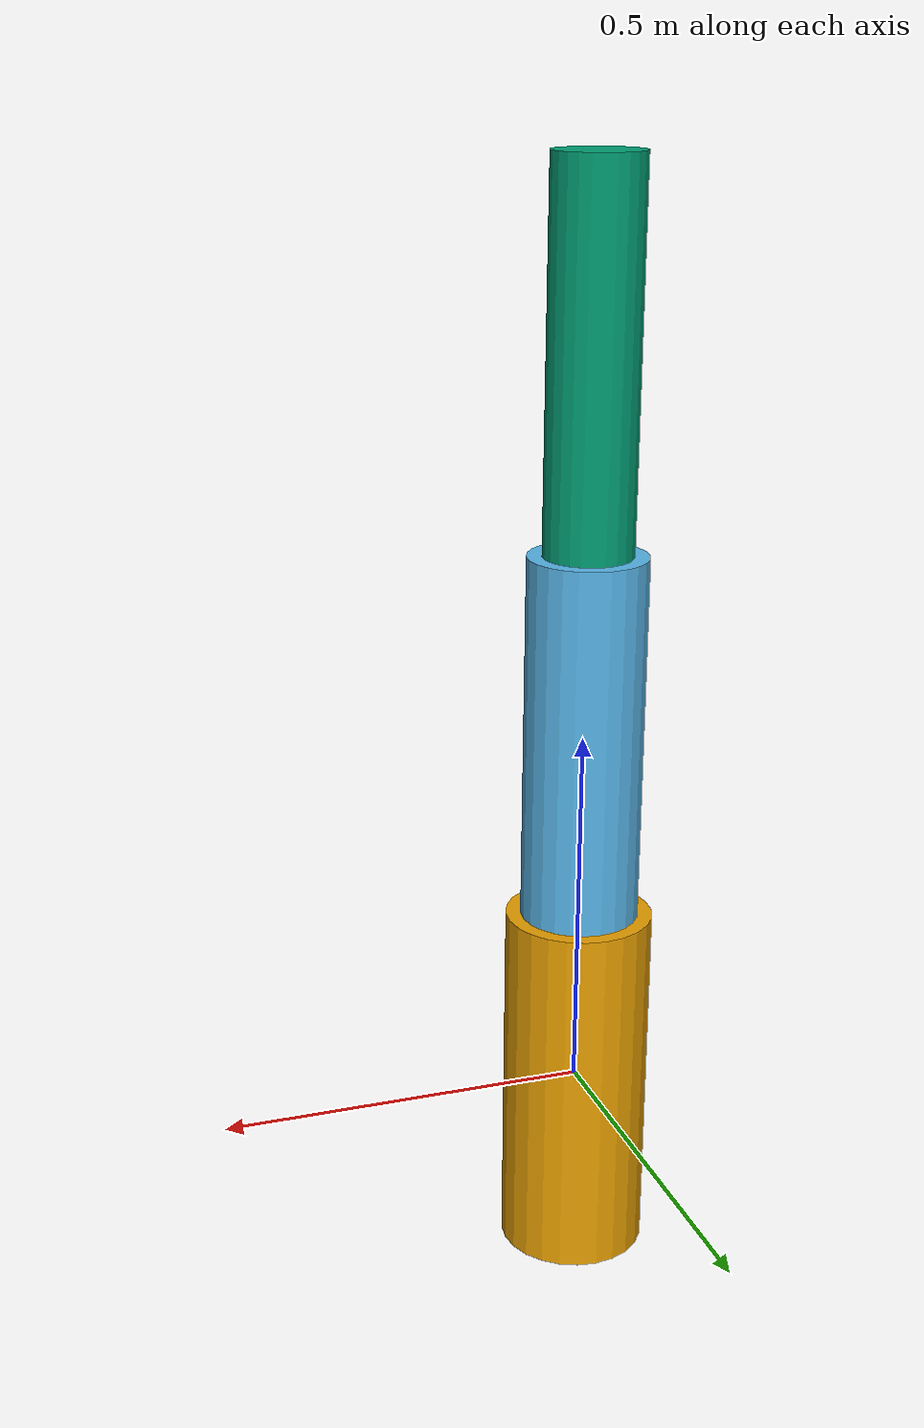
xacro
<?xml version="1.0"?>
<robot name="mrm" xmlns:xacro="http://www.ros.org/wiki/xacro">
  <link name="base_link">
    <visual>
	    <origin rpy="0 0 0" xyz="0.0 0 0" />
      <geometry>
        <cylinder length="0.5" radius="0.1"/>
      </geometry>
    </visual>
    <inertial>
	    <origin rpy="0 0 0" xyz="0.0 0 0" />
        <mass value="3"/>
         <inertia ixx="0.002"  ixy="0"  ixz="0.0" iyy= "0.002" iyz="0" izz="0.0005" />
      </inertial>
     <collision>
	    <origin rpy="0 0 0" xyz="0.0 0 0" />
        <geometry>
            <cylinder length="0.5" radius="0.1"/>
        </geometry>
     </collision>
  </link>

	<joint name="base_link_to_link_01" type="revolute">
	  <axis xyz="1 0 0"/>
		<limit effort="10.0" lower="-1.57" upper="1.57" velocity="0.5"/>
		<origin rpy="3.14 0 0" xyz="0.0 0 0.25"/>
		<parent link="base_link"/>
		<child link="link_01"/>
	</joint>

  <link name="link_01">
    <visual>
	    <origin rpy="0 0 0" xyz="0.0 0 -0.25" />
      <geometry>
        <cylinder length="0.5" radius="0.08"/>
      </geometry>
    </visual>
    <inertial>
	    <origin rpy="0 0 0" xyz="0.0 0 0" />
        <mass value="0.01"/>
         <inertia ixx="0.00224"  ixy="0"  ixz="0.0" iyy= "0.00224" iyz="0" izz="0.00032" />
      </inertial>
     <collision>
	    <origin rpy="0 0 0" xyz="0.0 0 0" />
        <geometry>
        <cylinder length="0.5" radius="0.08"/>
        </geometry>
     </collision>
  </link>

 <joint name="link_01_to_link_02" type="revolute">
	  <axis xyz="1 0 0"/>
		<limit effort="10.0" lower="-1.57" upper="1.57" velocity="0.5"/>
		<origin rpy="3.14 0 0" xyz="0.0 0 -0.5"/>
		<parent link="link_01"/>
		<child link="link_02"/>
	</joint>

  <link name="link_02">
    <visual>
	    <origin rpy="0 0 0" xyz="0 0 0.25" />
      <geometry>
        <cylinder length="0.5" radius="0.06"/>
      </geometry>
    </visual>
    <inertial>
	    <origin rpy="0 0 0" xyz="0.0 0 0" />
        <mass value="0.01"/>
         <inertia ixx="0.00217"  ixy="0.0"  ixz="0.0" iyy= "0.00217" iyz="0" izz="0.00018" />
      </inertial>
     <collision>
	    <origin rpy="0 0 0" xyz="0.0 0 0" />
        <geometry>
        <cylinder length="0.5" radius="0.06"/>
        </geometry>
     </collision>
  </link>

  <gazebo>
    <plugin name="gazebo_ros_control" filename="libgazebo_ros_control.so">
      <robotNamespace>/threelink</robotNamespace>
    </plugin>
  </gazebo>

  <gazebo reference="base_link_to_link_01">
        <kp>1000.0</kp>
        <kd>1000.0</kd>
        <mu1>10.0</mu1>
        <mu2>10.0</mu2>
        <material>Gazebo/Red</material>
    </gazebo>

  <transmission name="tran1">
    <type>transmission_interface/SimpleTransmission</type>
    <joint name="base_link_to_link_01">
      <hardwareInterface>hardware_interface/EffortJointInterface</hardwareInterface>
    </joint>
    <actuator name="motor1">
      <hardwareInterface>EffortJointInterface</hardwareInterface>
      <mechanicalReduction>1</mechanicalReduction>
    </actuator>
  </transmission>

  <gazebo reference="link_01_to_link_02">
        <kp>1000.0</kp>
        <kd>1000.0</kd>
        <mu1>10.0</mu1>
        <mu2>10.0</mu2>
        <material>Gazebo/Red</material>
    </gazebo>

  <transmission name="tran2">
    <type>transmission_interface/SimpleTransmission</type>
    <joint name="link_01_to_link_02">
      <hardwareInterface>hardware_interface/EffortJointInterface</hardwareInterface>
    </joint>
    <actuator name="motor2">
      <hardwareInterface>EffortJointInterface</hardwareInterface>
      <mechanicalReduction>1</mechanicalReduction>
    </actuator>
  </transmission> -->

</robot>
